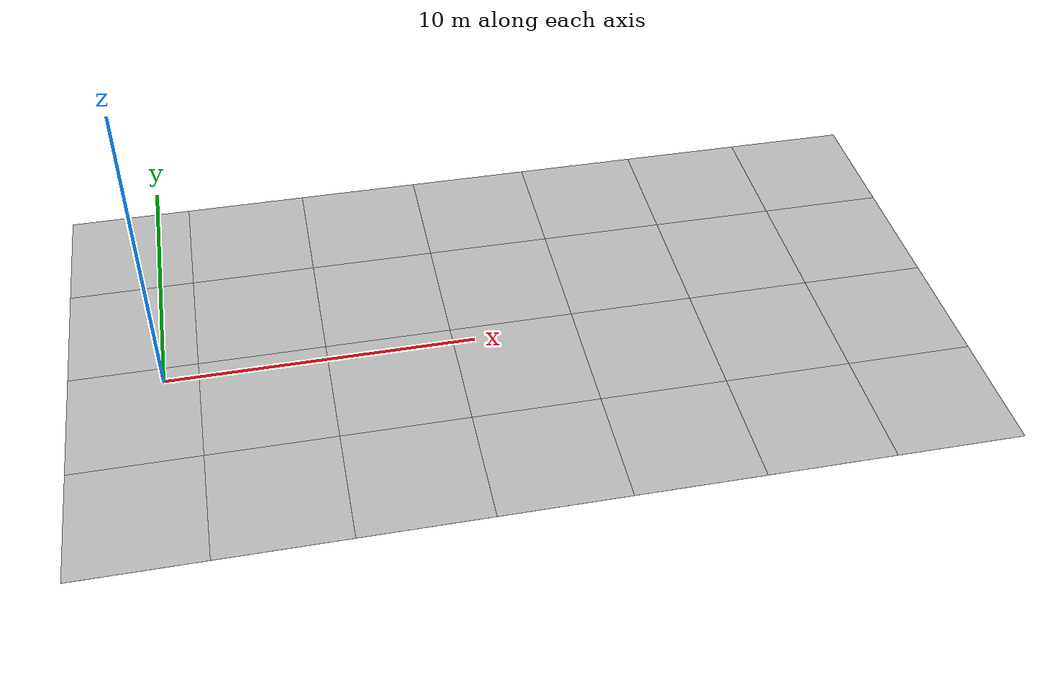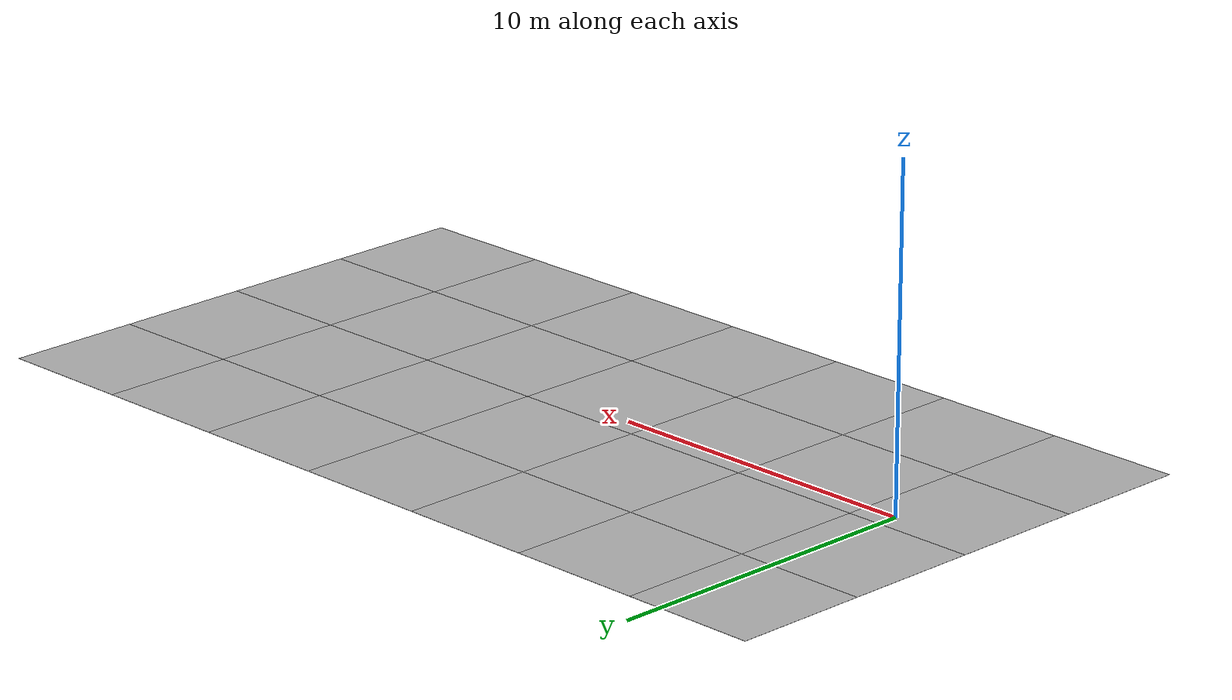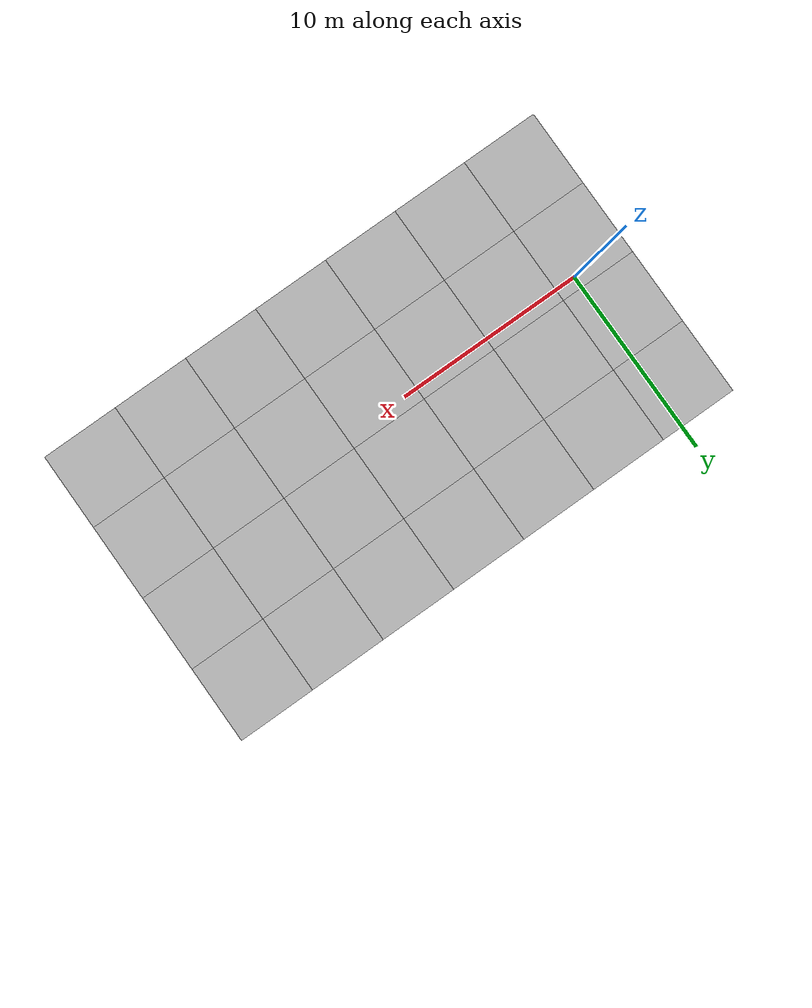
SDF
<sdf version='1.6'><world name='default'>
    <light name='sun_light' type='directional'>
      <pose frame=''>0 0 10 0 -0 0</pose>
      <diffuse>0.5 0.5 0.5 1</diffuse>
      <specular>0.1 0.1 0.1 1</specular>
      <direction>0.1 0.1 -0.9</direction>
      <attenuation>
        <range>20</range>
        <constant>0.5</constant>
        <linear>0.01</linear>
        <quadratic>0.001</quadratic>
      </attenuation>
      <cast_shadows>1</cast_shadows>
    </light>

    <model name='Tile/0-0'>
      <static>1</static>
      <link name='link'>
        <collision name='collision'>
          <geometry>
            <plane>
              <normal>0 0 1</normal>
              <size>4.096 4.096</size>
            </plane>
          </geometry>
          <surface>
            <friction>
              <ode>
                <mu>100</mu>
                <mu2>50</mu2>
              </ode>
              <torsional>
                <ode/>
              </torsional>
            </friction>
            <contact>
              <ode/>
            </contact>
            <bounce/>
          </surface>
          <max_contacts>10</max_contacts>
        </collision>
        <visual name='visual'>
          <cast_shadows>0</cast_shadows>
          <geometry>
            <plane>
              <normal>0 0 1</normal>
              <size>4.096 4.096</size>
            </plane>
          </geometry>
          <material>
            <script>
              <uri>file://materials/scripts</uri>
              <uri>file://materials/textures</uri>
              <name>Tile/5eab350b8220ac9944dbdfa4ac3288c7c17e24c3bf5df0dfcf6173d64dae00a1</name>
            </script>
          </material>
        </visual>
        <self_collide>0</self_collide>
        <enable_wind>0</enable_wind>
        <kinematic>0</kinematic>
      </link>
      <pose frame=''>-0.952 -5.5232812921102035 0 0 -0 0</pose>
    </model>

    <model name='Tile/0-1'>
      <static>1</static>
      <link name='link'>
        <collision name='collision'>
          <geometry>
            <plane>
              <normal>0 0 1</normal>
              <size>4.096 4.096</size>
            </plane>
          </geometry>
          <surface>
            <friction>
              <ode>
                <mu>100</mu>
                <mu2>50</mu2>
              </ode>
              <torsional>
                <ode/>
              </torsional>
            </friction>
            <contact>
              <ode/>
            </contact>
            <bounce/>
          </surface>
          <max_contacts>10</max_contacts>
        </collision>
        <visual name='visual'>
          <cast_shadows>0</cast_shadows>
          <geometry>
            <plane>
              <normal>0 0 1</normal>
              <size>4.096 4.096</size>
            </plane>
          </geometry>
          <material>
            <script>
              <uri>file://materials/scripts</uri>
              <uri>file://materials/textures</uri>
              <name>Tile/77732ed777fa1f7385c9abc7915a6c02e6d040daee73fd0058ec88173c0e603a</name>
            </script>
          </material>
        </visual>
        <self_collide>0</self_collide>
        <enable_wind>0</enable_wind>
        <kinematic>0</kinematic>
      </link>
      <pose frame=''>-0.952 -1.4272812921102034 0 0 -0 0</pose>
    </model>

    <model name='Tile/0-2'>
      <static>1</static>
      <link name='link'>
        <collision name='collision'>
          <geometry>
            <plane>
              <normal>0 0 1</normal>
              <size>4.096 4.096</size>
            </plane>
          </geometry>
          <surface>
            <friction>
              <ode>
                <mu>100</mu>
                <mu2>50</mu2>
              </ode>
              <torsional>
                <ode/>
              </torsional>
            </friction>
            <contact>
              <ode/>
            </contact>
            <bounce/>
          </surface>
          <max_contacts>10</max_contacts>
        </collision>
        <visual name='visual'>
          <cast_shadows>0</cast_shadows>
          <geometry>
            <plane>
              <normal>0 0 1</normal>
              <size>4.096 4.096</size>
            </plane>
          </geometry>
          <material>
            <script>
              <uri>file://materials/scripts</uri>
              <uri>file://materials/textures</uri>
              <name>Tile/5eab350b8220ac9944dbdfa4ac3288c7c17e24c3bf5df0dfcf6173d64dae00a1</name>
            </script>
          </material>
        </visual>
        <self_collide>0</self_collide>
        <enable_wind>0</enable_wind>
        <kinematic>0</kinematic>
      </link>
      <pose frame=''>-0.952 2.6687187078897967 0 0 -0 0</pose>
    </model>

    <model name='Tile/0-3'>
      <static>1</static>
      <link name='link'>
        <collision name='collision'>
          <geometry>
            <plane>
              <normal>0 0 1</normal>
              <size>4.096 4.096</size>
            </plane>
          </geometry>
          <surface>
            <friction>
              <ode>
                <mu>100</mu>
                <mu2>50</mu2>
              </ode>
              <torsional>
                <ode/>
              </torsional>
            </friction>
            <contact>
              <ode/>
            </contact>
            <bounce/>
          </surface>
          <max_contacts>10</max_contacts>
        </collision>
        <visual name='visual'>
          <cast_shadows>0</cast_shadows>
          <geometry>
            <plane>
              <normal>0 0 1</normal>
              <size>4.096 4.096</size>
            </plane>
          </geometry>
          <material>
            <script>
              <uri>file://materials/scripts</uri>
              <uri>file://materials/textures</uri>
              <name>Tile/5eab350b8220ac9944dbdfa4ac3288c7c17e24c3bf5df0dfcf6173d64dae00a1</name>
            </script>
          </material>
        </visual>
        <self_collide>0</self_collide>
        <enable_wind>0</enable_wind>
        <kinematic>0</kinematic>
      </link>
      <pose frame=''>-0.952 6.764718707889797 0 0 -0 0</pose>
    </model>

    <model name='Tile/1-0'>
      <static>1</static>
      <link name='link'>
        <collision name='collision'>
          <geometry>
            <plane>
              <normal>0 0 1</normal>
              <size>4.096 4.096</size>
            </plane>
          </geometry>
          <surface>
            <friction>
              <ode>
                <mu>100</mu>
                <mu2>50</mu2>
              </ode>
              <torsional>
                <ode/>
              </torsional>
            </friction>
            <contact>
              <ode/>
            </contact>
            <bounce/>
          </surface>
          <max_contacts>10</max_contacts>
        </collision>
        <visual name='visual'>
          <cast_shadows>0</cast_shadows>
          <geometry>
            <plane>
              <normal>0 0 1</normal>
              <size>4.096 4.096</size>
            </plane>
          </geometry>
          <material>
            <script>
              <uri>file://materials/scripts</uri>
              <uri>file://materials/textures</uri>
              <name>Tile/5eab350b8220ac9944dbdfa4ac3288c7c17e24c3bf5df0dfcf6173d64dae00a1</name>
            </script>
          </material>
        </visual>
        <self_collide>0</self_collide>
        <enable_wind>0</enable_wind>
        <kinematic>0</kinematic>
      </link>
      <pose frame=''>3.144 -5.5232812921102035 0 0 -0 0</pose>
    </model>

    <model name='Tile/1-1'>
      <static>1</static>
      <link name='link'>
        <collision name='collision'>
          <geometry>
            <plane>
              <normal>0 0 1</normal>
              <size>4.096 4.096</size>
            </plane>
          </geometry>
          <surface>
            <friction>
              <ode>
                <mu>100</mu>
                <mu2>50</mu2>
              </ode>
              <torsional>
                <ode/>
              </torsional>
            </friction>
            <contact>
              <ode/>
            </contact>
            <bounce/>
          </surface>
          <max_contacts>10</max_contacts>
        </collision>
        <visual name='visual'>
          <cast_shadows>0</cast_shadows>
          <geometry>
            <plane>
              <normal>0 0 1</normal>
              <size>4.096 4.096</size>
            </plane>
          </geometry>
          <material>
            <script>
              <uri>file://materials/scripts</uri>
              <uri>file://materials/textures</uri>
              <name>Tile/9a9c45f2f3ae123da64c76318918023181258b1b421ac945b76d3178dedd902e</name>
            </script>
          </material>
        </visual>
        <self_collide>0</self_collide>
        <enable_wind>0</enable_wind>
        <kinematic>0</kinematic>
      </link>
      <pose frame=''>3.144 -1.4272812921102034 0 0 -0 0</pose>
    </model>

    <model name='Tile/1-2'>
      <static>1</static>
      <link name='link'>
        <collision name='collision'>
          <geometry>
            <plane>
              <normal>0 0 1</normal>
              <size>4.096 4.096</size>
            </plane>
          </geometry>
          <surface>
            <friction>
              <ode>
                <mu>100</mu>
                <mu2>50</mu2>
              </ode>
              <torsional>
                <ode/>
              </torsional>
            </friction>
            <contact>
              <ode/>
            </contact>
            <bounce/>
          </surface>
          <max_contacts>10</max_contacts>
        </collision>
        <visual name='visual'>
          <cast_shadows>0</cast_shadows>
          <geometry>
            <plane>
              <normal>0 0 1</normal>
              <size>4.096 4.096</size>
            </plane>
          </geometry>
          <material>
            <script>
              <uri>file://materials/scripts</uri>
              <uri>file://materials/textures</uri>
              <name>Tile/f5207174bae2b5f094a2aebeb0c4ca01f930d179ab84015992e31550a93fa324</name>
            </script>
          </material>
        </visual>
        <self_collide>0</self_collide>
        <enable_wind>0</enable_wind>
        <kinematic>0</kinematic>
      </link>
      <pose frame=''>3.144 2.6687187078897967 0 0 -0 0</pose>
    </model>

    <model name='Tile/1-3'>
      <static>1</static>
      <link name='link'>
        <collision name='collision'>
          <geometry>
            <plane>
              <normal>0 0 1</normal>
              <size>4.096 4.096</size>
            </plane>
          </geometry>
          <surface>
            <friction>
              <ode>
                <mu>100</mu>
                <mu2>50</mu2>
              </ode>
              <torsional>
                <ode/>
              </torsional>
            </friction>
            <contact>
              <ode/>
            </contact>
            <bounce/>
          </surface>
          <max_contacts>10</max_contacts>
        </collision>
        <visual name='visual'>
          <cast_shadows>0</cast_shadows>
          <geometry>
            <plane>
              <normal>0 0 1</normal>
              <size>4.096 4.096</size>
            </plane>
          </geometry>
          <material>
            <script>
              <uri>file://materials/scripts</uri>
              <uri>file://materials/textures</uri>
              <name>Tile/5eab350b8220ac9944dbdfa4ac3288c7c17e24c3bf5df0dfcf6173d64dae00a1</name>
            </script>
          </material>
        </visual>
        <self_collide>0</self_collide>
        <enable_wind>0</enable_wind>
        <kinematic>0</kinematic>
      </link>
      <pose frame=''>3.144 6.764718707889797 0 0 -0 0</pose>
    </model>

    <model name='Tile/2-0'>
      <static>1</static>
      <link name='link'>
        <collision name='collision'>
          <geometry>
            <plane>
              <normal>0 0 1</normal>
              <size>4.096 4.096</size>
            </plane>
          </geometry>
          <surface>
            <friction>
              <ode>
                <mu>100</mu>
                <mu2>50</mu2>
              </ode>
              <torsional>
                <ode/>
              </torsional>
            </friction>
            <contact>
              <ode/>
            </contact>
            <bounce/>
          </surface>
          <max_contacts>10</max_contacts>
        </collision>
        <visual name='visual'>
          <cast_shadows>0</cast_shadows>
          <geometry>
            <plane>
              <normal>0 0 1</normal>
              <size>4.096 4.096</size>
            </plane>
          </geometry>
          <material>
            <script>
              <uri>file://materials/scripts</uri>
              <uri>file://materials/textures</uri>
              <name>Tile/5eab350b8220ac9944dbdfa4ac3288c7c17e24c3bf5df0dfcf6173d64dae00a1</name>
            </script>
          </material>
        </visual>
        <self_collide>0</self_collide>
        <enable_wind>0</enable_wind>
        <kinematic>0</kinematic>
      </link>
      <pose frame=''>7.24 -5.5232812921102035 0 0 -0 0</pose>
    </model>

    <model name='Tile/2-1'>
      <static>1</static>
      <link name='link'>
        <collision name='collision'>
          <geometry>
            <plane>
              <normal>0 0 1</normal>
              <size>4.096 4.096</size>
            </plane>
          </geometry>
          <surface>
            <friction>
              <ode>
                <mu>100</mu>
                <mu2>50</mu2>
              </ode>
              <torsional>
                <ode/>
              </torsional>
            </friction>
            <contact>
              <ode/>
            </contact>
            <bounce/>
          </surface>
          <max_contacts>10</max_contacts>
        </collision>
        <visual name='visual'>
          <cast_shadows>0</cast_shadows>
          <geometry>
            <plane>
              <normal>0 0 1</normal>
              <size>4.096 4.096</size>
            </plane>
          </geometry>
          <material>
            <script>
              <uri>file://materials/scripts</uri>
              <uri>file://materials/textures</uri>
              <name>Tile/80f1728328d1cf17491becb87c4a098df52c4d8f367fd717cb4e44747b35fe14</name>
            </script>
          </material>
        </visual>
        <self_collide>0</self_collide>
        <enable_wind>0</enable_wind>
        <kinematic>0</kinematic>
      </link>
      <pose frame=''>7.24 -1.4272812921102034 0 0 -0 0</pose>
    </model>

    <model name='Tile/2-2'>
      <static>1</static>
      <link name='link'>
        <collision name='collision'>
          <geometry>
            <plane>
              <normal>0 0 1</normal>
              <size>4.096 4.096</size>
            </plane>
          </geometry>
          <surface>
            <friction>
              <ode>
                <mu>100</mu>
                <mu2>50</mu2>
              </ode>
              <torsional>
                <ode/>
              </torsional>
            </friction>
            <contact>
              <ode/>
            </contact>
            <bounce/>
          </surface>
          <max_contacts>10</max_contacts>
        </collision>
        <visual name='visual'>
          <cast_shadows>0</cast_shadows>
          <geometry>
            <plane>
              <normal>0 0 1</normal>
              <size>4.096 4.096</size>
            </plane>
          </geometry>
          <material>
            <script>
              <uri>file://materials/scripts</uri>
              <uri>file://materials/textures</uri>
              <name>Tile/a97ce6c28d1b773002d50e0ac13da2d1c4f7e9045c18646be916c70b0014d4d6</name>
            </script>
          </material>
        </visual>
        <self_collide>0</self_collide>
        <enable_wind>0</enable_wind>
        <kinematic>0</kinematic>
      </link>
      <pose frame=''>7.24 2.6687187078897967 0 0 -0 0</pose>
    </model>

    <model name='Tile/2-3'>
      <static>1</static>
      <link name='link'>
        <collision name='collision'>
          <geometry>
            <plane>
              <normal>0 0 1</normal>
              <size>4.096 4.096</size>
            </plane>
          </geometry>
          <surface>
            <friction>
              <ode>
                <mu>100</mu>
                <mu2>50</mu2>
              </ode>
              <torsional>
                <ode/>
              </torsional>
            </friction>
            <contact>
              <ode/>
            </contact>
            <bounce/>
          </surface>
          <max_contacts>10</max_contacts>
        </collision>
        <visual name='visual'>
          <cast_shadows>0</cast_shadows>
          <geometry>
            <plane>
              <normal>0 0 1</normal>
              <size>4.096 4.096</size>
            </plane>
          </geometry>
          <material>
            <script>
              <uri>file://materials/scripts</uri>
              <uri>file://materials/textures</uri>
              <name>Tile/5eab350b8220ac9944dbdfa4ac3288c7c17e24c3bf5df0dfcf6173d64dae00a1</name>
            </script>
          </material>
        </visual>
        <self_collide>0</self_collide>
        <enable_wind>0</enable_wind>
        <kinematic>0</kinematic>
      </link>
      <pose frame=''>7.24 6.764718707889797 0 0 -0 0</pose>
    </model>

    <model name='Tile/3-0'>
      <static>1</static>
      <link name='link'>
        <collision name='collision'>
          <geometry>
            <plane>
              <normal>0 0 1</normal>
              <size>4.096 4.096</size>
            </plane>
          </geometry>
          <surface>
            <friction>
              <ode>
                <mu>100</mu>
                <mu2>50</mu2>
              </ode>
              <torsional>
                <ode/>
              </torsional>
            </friction>
            <contact>
              <ode/>
            </contact>
            <bounce/>
          </surface>
          <max_contacts>10</max_contacts>
        </collision>
        <visual name='visual'>
          <cast_shadows>0</cast_shadows>
          <geometry>
            <plane>
              <normal>0 0 1</normal>
              <size>4.096 4.096</size>
            </plane>
          </geometry>
          <material>
            <script>
              <uri>file://materials/scripts</uri>
              <uri>file://materials/textures</uri>
              <name>Tile/5eab350b8220ac9944dbdfa4ac3288c7c17e24c3bf5df0dfcf6173d64dae00a1</name>
            </script>
          </material>
        </visual>
        <self_collide>0</self_collide>
        <enable_wind>0</enable_wind>
        <kinematic>0</kinematic>
      </link>
      <pose frame=''>11.336 -5.5232812921102035 0 0 -0 0</pose>
    </model>

    <model name='Tile/3-1'>
      <static>1</static>
      <link name='link'>
        <collision name='collision'>
          <geometry>
            <plane>
              <normal>0 0 1</normal>
              <size>4.096 4.096</size>
            </plane>
          </geometry>
          <surface>
            <friction>
              <ode>
                <mu>100</mu>
                <mu2>50</mu2>
              </ode>
              <torsional>
                <ode/>
              </torsional>
            </friction>
            <contact>
              <ode/>
            </contact>
            <bounce/>
          </surface>
          <max_contacts>10</max_contacts>
        </collision>
        <visual name='visual'>
          <cast_shadows>0</cast_shadows>
          <geometry>
            <plane>
              <normal>0 0 1</normal>
              <size>4.096 4.096</size>
            </plane>
          </geometry>
          <material>
            <script>
              <uri>file://materials/scripts</uri>
              <uri>file://materials/textures</uri>
              <name>Tile/2058e8b0140f13087e55bef1d5642d244ed33c3c2e11ac535427c192cfb34b27</name>
            </script>
          </material>
        </visual>
        <self_collide>0</self_collide>
        <enable_wind>0</enable_wind>
        <kinematic>0</kinematic>
      </link>
      <pose frame=''>11.336 -1.4272812921102034 0 0 -0 0</pose>
    </model>

    <model name='Tile/3-2'>
      <static>1</static>
      <link name='link'>
        <collision name='collision'>
          <geometry>
            <plane>
              <normal>0 0 1</normal>
              <size>4.096 4.096</size>
            </plane>
          </geometry>
          <surface>
            <friction>
              <ode>
                <mu>100</mu>
                <mu2>50</mu2>
              </ode>
              <torsional>
                <ode/>
              </torsional>
            </friction>
            <contact>
              <ode/>
            </contact>
            <bounce/>
          </surface>
          <max_contacts>10</max_contacts>
        </collision>
        <visual name='visual'>
          <cast_shadows>0</cast_shadows>
          <geometry>
            <plane>
              <normal>0 0 1</normal>
              <size>4.096 4.096</size>
            </plane>
          </geometry>
          <material>
            <script>
              <uri>file://materials/scripts</uri>
              <uri>file://materials/textures</uri>
              <name>Tile/5eab350b8220ac9944dbdfa4ac3288c7c17e24c3bf5df0dfcf6173d64dae00a1</name>
            </script>
          </material>
        </visual>
        <self_collide>0</self_collide>
        <enable_wind>0</enable_wind>
        <kinematic>0</kinematic>
      </link>
      <pose frame=''>11.336 2.6687187078897967 0 0 -0 0</pose>
    </model>

    <model name='Tile/3-3'>
      <static>1</static>
      <link name='link'>
        <collision name='collision'>
          <geometry>
            <plane>
              <normal>0 0 1</normal>
              <size>4.096 4.096</size>
            </plane>
          </geometry>
          <surface>
            <friction>
              <ode>
                <mu>100</mu>
                <mu2>50</mu2>
              </ode>
              <torsional>
                <ode/>
              </torsional>
            </friction>
            <contact>
              <ode/>
            </contact>
            <bounce/>
          </surface>
          <max_contacts>10</max_contacts>
        </collision>
        <visual name='visual'>
          <cast_shadows>0</cast_shadows>
          <geometry>
            <plane>
              <normal>0 0 1</normal>
              <size>4.096 4.096</size>
            </plane>
          </geometry>
          <material>
            <script>
              <uri>file://materials/scripts</uri>
              <uri>file://materials/textures</uri>
              <name>Tile/5eab350b8220ac9944dbdfa4ac3288c7c17e24c3bf5df0dfcf6173d64dae00a1</name>
            </script>
          </material>
        </visual>
        <self_collide>0</self_collide>
        <enable_wind>0</enable_wind>
        <kinematic>0</kinematic>
      </link>
      <pose frame=''>11.336 6.764718707889797 0 0 -0 0</pose>
    </model>

    <model name='Tile/4-0'>
      <static>1</static>
      <link name='link'>
        <collision name='collision'>
          <geometry>
            <plane>
              <normal>0 0 1</normal>
              <size>4.096 4.096</size>
            </plane>
          </geometry>
          <surface>
            <friction>
              <ode>
                <mu>100</mu>
                <mu2>50</mu2>
              </ode>
              <torsional>
                <ode/>
              </torsional>
            </friction>
            <contact>
              <ode/>
            </contact>
            <bounce/>
          </surface>
          <max_contacts>10</max_contacts>
        </collision>
        <visual name='visual'>
          <cast_shadows>0</cast_shadows>
          <geometry>
            <plane>
              <normal>0 0 1</normal>
              <size>4.096 4.096</size>
            </plane>
          </geometry>
          <material>
            <script>
              <uri>file://materials/scripts</uri>
              <uri>file://materials/textures</uri>
              <name>Tile/5eab350b8220ac9944dbdfa4ac3288c7c17e24c3bf5df0dfcf6173d64dae00a1</name>
            </script>
          </material>
        </visual>
        <self_collide>0</self_collide>
        <enable_wind>0</enable_wind>
        <kinematic>0</kinematic>
      </link>
      <pose frame=''>15.431999999999999 -5.5232812921102035 0 0 -0 0</pose>
    </model>

    <model name='Tile/4-1'>
      <static>1</static>
      <link name='link'>
        <collision name='collision'>
          <geometry>
            <plane>
              <normal>0 0 1</normal>
              <size>4.096 4.096</size>
            </plane>
          </geometry>
          <surface>
            <friction>
              <ode>
                <mu>100</mu>
                <mu2>50</mu2>
              </ode>
              <torsional>
                <ode/>
              </torsional>
            </friction>
            <contact>
              <ode/>
            </contact>
            <bounce/>
          </surface>
          <max_contacts>10</max_contacts>
        </collision>
        <visual name='visual'>
          <cast_shadows>0</cast_shadows>
          <geometry>
            <plane>
              <normal>0 0 1</normal>
              <size>4.096 4.096</size>
            </plane>
          </geometry>
          <material>
            <script>
              <uri>file://materials/scripts</uri>
              <uri>file://materials/textures</uri>
              <name>Tile/02a629105f71d5f45e66485bcbb64a8fc3bdcd5e42cacda941f174c0ebe1cee6</name>
            </script>
          </material>
        </visual>
        <self_collide>0</self_collide>
        <enable_wind>0</enable_wind>
        <kinematic>0</kinematic>
      </link>
      <pose frame=''>15.431999999999999 -1.4272812921102034 0 0 -0 0</pose>
    </model>

    <model name='Tile/4-2'>
      <static>1</static>
      <link name='link'>
        <collision name='collision'>
          <geometry>
            <plane>
              <normal>0 0 1</normal>
              <size>4.096 4.096</size>
            </plane>
          </geometry>
          <surface>
            <friction>
              <ode>
                <mu>100</mu>
                <mu2>50</mu2>
              </ode>
              <torsional>
                <ode/>
              </torsional>
            </friction>
            <contact>
              <ode/>
            </contact>
            <bounce/>
          </surface>
          <max_contacts>10</max_contacts>
        </collision>
        <visual name='visual'>
          <cast_shadows>0</cast_shadows>
          <geometry>
            <plane>
              <normal>0 0 1</normal>
              <size>4.096 4.096</size>
            </plane>
          </geometry>
          <material>
            <script>
              <uri>file://materials/scripts</uri>
              <uri>file://materials/textures</uri>
              <name>Tile/6d2e7846da5a1a41c5b649178ea03dbaef44e2cee76cec37587eaf4ea3ebff64</name>
            </script>
          </material>
        </visual>
        <self_collide>0</self_collide>
        <enable_wind>0</enable_wind>
        <kinematic>0</kinematic>
      </link>
      <pose frame=''>15.431999999999999 2.6687187078897967 0 0 -0 0</pose>
    </model>

    <model name='Tile/4-3'>
      <static>1</static>
      <link name='link'>
        <collision name='collision'>
          <geometry>
            <plane>
              <normal>0 0 1</normal>
              <size>4.096 4.096</size>
            </plane>
          </geometry>
          <surface>
            <friction>
              <ode>
                <mu>100</mu>
                <mu2>50</mu2>
              </ode>
              <torsional>
                <ode/>
              </torsional>
            </friction>
            <contact>
              <ode/>
            </contact>
            <bounce/>
          </surface>
          <max_contacts>10</max_contacts>
        </collision>
        <visual name='visual'>
          <cast_shadows>0</cast_shadows>
          <geometry>
            <plane>
              <normal>0 0 1</normal>
              <size>4.096 4.096</size>
            </plane>
          </geometry>
          <material>
            <script>
              <uri>file://materials/scripts</uri>
              <uri>file://materials/textures</uri>
              <name>Tile/5eab350b8220ac9944dbdfa4ac3288c7c17e24c3bf5df0dfcf6173d64dae00a1</name>
            </script>
          </material>
        </visual>
        <self_collide>0</self_collide>
        <enable_wind>0</enable_wind>
        <kinematic>0</kinematic>
      </link>
      <pose frame=''>15.431999999999999 6.764718707889797 0 0 -0 0</pose>
    </model>

    <model name='Tile/5-0'>
      <static>1</static>
      <link name='link'>
        <collision name='collision'>
          <geometry>
            <plane>
              <normal>0 0 1</normal>
              <size>4.096 4.096</size>
            </plane>
          </geometry>
          <surface>
            <friction>
              <ode>
                <mu>100</mu>
                <mu2>50</mu2>
              </ode>
              <torsional>
                <ode/>
              </torsional>
            </friction>
            <contact>
              <ode/>
            </contact>
            <bounce/>
          </surface>
          <max_contacts>10</max_contacts>
        </collision>
        <visual name='visual'>
          <cast_shadows>0</cast_shadows>
          <geometry>
            <plane>
              <normal>0 0 1</normal>
              <size>4.096 4.096</size>
            </plane>
          </geometry>
          <material>
            <script>
              <uri>file://materials/scripts</uri>
              <uri>file://materials/textures</uri>
              <name>Tile/1f79e4427144165e04f1f647a8c5c3f8feb2a4f8d6b3c1abf682d198a1141d4b</name>
            </script>
          </material>
        </visual>
        <self_collide>0</self_collide>
        <enable_wind>0</enable_wind>
        <kinematic>0</kinematic>
      </link>
      <pose frame=''>19.528 -5.5232812921102035 0 0 -0 0</pose>
    </model>

    <model name='Tile/5-1'>
      <static>1</static>
      <link name='link'>
        <collision name='collision'>
          <geometry>
            <plane>
              <normal>0 0 1</normal>
              <size>4.096 4.096</size>
            </plane>
          </geometry>
          <surface>
            <friction>
              <ode>
                <mu>100</mu>
                <mu2>50</mu2>
              </ode>
              <torsional>
                <ode/>
              </torsional>
            </friction>
            <contact>
              <ode/>
            </contact>
            <bounce/>
          </surface>
          <max_contacts>10</max_contacts>
        </collision>
        <visual name='visual'>
          <cast_shadows>0</cast_shadows>
          <geometry>
            <plane>
              <normal>0 0 1</normal>
              <size>4.096 4.096</size>
            </plane>
          </geometry>
          <material>
            <script>
              <uri>file://materials/scripts</uri>
              <uri>file://materials/textures</uri>
              <name>Tile/83fe6895a220f1ef5a91dc3e5e02060d03c6cc36c83f93fef9699cf2e7249c2e</name>
            </script>
          </material>
        </visual>
        <self_collide>0</self_collide>
        <enable_wind>0</enable_wind>
        <kinematic>0</kinematic>
      </link>
      <pose frame=''>19.528 -1.4272812921102034 0 0 -0 0</pose>
    </model>

    <model name='Tile/5-2'>
      <static>1</static>
      <link name='link'>
        <collision name='collision'>
          <geometry>
            <plane>
              <normal>0 0 1</normal>
              <size>4.096 4.096</size>
            </plane>
          </geometry>
          <surface>
            <friction>
              <ode>
                <mu>100</mu>
                <mu2>50</mu2>
              </ode>
              <torsional>
                <ode/>
              </torsional>
            </friction>
            <contact>
              <ode/>
            </contact>
            <bounce/>
          </surface>
          <max_contacts>10</max_contacts>
        </collision>
        <visual name='visual'>
          <cast_shadows>0</cast_shadows>
          <geometry>
            <plane>
              <normal>0 0 1</normal>
              <size>4.096 4.096</size>
            </plane>
          </geometry>
          <material>
            <script>
              <uri>file://materials/scripts</uri>
              <uri>file://materials/textures</uri>
              <name>Tile/92e3578c3478731c21097058d722f3dbe75bd8f83b64b6a479ee48ef76303996</name>
            </script>
          </material>
        </visual>
        <self_collide>0</self_collide>
        <enable_wind>0</enable_wind>
        <kinematic>0</kinematic>
      </link>
      <pose frame=''>19.528 2.6687187078897967 0 0 -0 0</pose>
    </model>

    <model name='Tile/5-3'>
      <static>1</static>
      <link name='link'>
        <collision name='collision'>
          <geometry>
            <plane>
              <normal>0 0 1</normal>
              <size>4.096 4.096</size>
            </plane>
          </geometry>
          <surface>
            <friction>
              <ode>
                <mu>100</mu>
                <mu2>50</mu2>
              </ode>
              <torsional>
                <ode/>
              </torsional>
            </friction>
            <contact>
              <ode/>
            </contact>
            <bounce/>
          </surface>
          <max_contacts>10</max_contacts>
        </collision>
        <visual name='visual'>
          <cast_shadows>0</cast_shadows>
          <geometry>
            <plane>
              <normal>0 0 1</normal>
              <size>4.096 4.096</size>
            </plane>
          </geometry>
          <material>
            <script>
              <uri>file://materials/scripts</uri>
              <uri>file://materials/textures</uri>
              <name>Tile/5eab350b8220ac9944dbdfa4ac3288c7c17e24c3bf5df0dfcf6173d64dae00a1</name>
            </script>
          </material>
        </visual>
        <self_collide>0</self_collide>
        <enable_wind>0</enable_wind>
        <kinematic>0</kinematic>
      </link>
      <pose frame=''>19.528 6.764718707889797 0 0 -0 0</pose>
    </model>

    <model name='Tile/6-0'>
      <static>1</static>
      <link name='link'>
        <collision name='collision'>
          <geometry>
            <plane>
              <normal>0 0 1</normal>
              <size>4.096 4.096</size>
            </plane>
          </geometry>
          <surface>
            <friction>
              <ode>
                <mu>100</mu>
                <mu2>50</mu2>
              </ode>
              <torsional>
                <ode/>
              </torsional>
            </friction>
            <contact>
              <ode/>
            </contact>
            <bounce/>
          </surface>
          <max_contacts>10</max_contacts>
        </collision>
        <visual name='visual'>
          <cast_shadows>0</cast_shadows>
          <geometry>
            <plane>
              <normal>0 0 1</normal>
              <size>4.096 4.096</size>
            </plane>
          </geometry>
          <material>
            <script>
              <uri>file://materials/scripts</uri>
              <uri>file://materials/textures</uri>
              <name>Tile/5eab350b8220ac9944dbdfa4ac3288c7c17e24c3bf5df0dfcf6173d64dae00a1</name>
            </script>
          </material>
        </visual>
        <self_collide>0</self_collide>
        <enable_wind>0</enable_wind>
        <kinematic>0</kinematic>
      </link>
      <pose frame=''>23.624 -5.5232812921102035 0 0 -0 0</pose>
    </model>

    <model name='Tile/6-1'>
      <static>1</static>
      <link name='link'>
        <collision name='collision'>
          <geometry>
            <plane>
              <normal>0 0 1</normal>
              <size>4.096 4.096</size>
            </plane>
          </geometry>
          <surface>
            <friction>
              <ode>
                <mu>100</mu>
                <mu2>50</mu2>
              </ode>
              <torsional>
                <ode/>
              </torsional>
            </friction>
            <contact>
              <ode/>
            </contact>
            <bounce/>
          </surface>
          <max_contacts>10</max_contacts>
        </collision>
        <visual name='visual'>
          <cast_shadows>0</cast_shadows>
          <geometry>
            <plane>
              <normal>0 0 1</normal>
              <size>4.096 4.096</size>
            </plane>
          </geometry>
          <material>
            <script>
              <uri>file://materials/scripts</uri>
              <uri>file://materials/textures</uri>
              <name>Tile/5eab350b8220ac9944dbdfa4ac3288c7c17e24c3bf5df0dfcf6173d64dae00a1</name>
            </script>
          </material>
        </visual>
        <self_collide>0</self_collide>
        <enable_wind>0</enable_wind>
        <kinematic>0</kinematic>
      </link>
      <pose frame=''>23.624 -1.4272812921102034 0 0 -0 0</pose>
    </model>

    <model name='Tile/6-2'>
      <static>1</static>
      <link name='link'>
        <collision name='collision'>
          <geometry>
            <plane>
              <normal>0 0 1</normal>
              <size>4.096 4.096</size>
            </plane>
          </geometry>
          <surface>
            <friction>
              <ode>
                <mu>100</mu>
                <mu2>50</mu2>
              </ode>
              <torsional>
                <ode/>
              </torsional>
            </friction>
            <contact>
              <ode/>
            </contact>
            <bounce/>
          </surface>
          <max_contacts>10</max_contacts>
        </collision>
        <visual name='visual'>
          <cast_shadows>0</cast_shadows>
          <geometry>
            <plane>
              <normal>0 0 1</normal>
              <size>4.096 4.096</size>
            </plane>
          </geometry>
          <material>
            <script>
              <uri>file://materials/scripts</uri>
              <uri>file://materials/textures</uri>
              <name>Tile/5eab350b8220ac9944dbdfa4ac3288c7c17e24c3bf5df0dfcf6173d64dae00a1</name>
            </script>
          </material>
        </visual>
        <self_collide>0</self_collide>
        <enable_wind>0</enable_wind>
        <kinematic>0</kinematic>
      </link>
      <pose frame=''>23.624 2.6687187078897967 0 0 -0 0</pose>
    </model>

    <model name='Tile/6-3'>
      <static>1</static>
      <link name='link'>
        <collision name='collision'>
          <geometry>
            <plane>
              <normal>0 0 1</normal>
              <size>4.096 4.096</size>
            </plane>
          </geometry>
          <surface>
            <friction>
              <ode>
                <mu>100</mu>
                <mu2>50</mu2>
              </ode>
              <torsional>
                <ode/>
              </torsional>
            </friction>
            <contact>
              <ode/>
            </contact>
            <bounce/>
          </surface>
          <max_contacts>10</max_contacts>
        </collision>
        <visual name='visual'>
          <cast_shadows>0</cast_shadows>
          <geometry>
            <plane>
              <normal>0 0 1</normal>
              <size>4.096 4.096</size>
            </plane>
          </geometry>
          <material>
            <script>
              <uri>file://materials/scripts</uri>
              <uri>file://materials/textures</uri>
              <name>Tile/5eab350b8220ac9944dbdfa4ac3288c7c17e24c3bf5df0dfcf6173d64dae00a1</name>
            </script>
          </material>
        </visual>
        <self_collide>0</self_collide>
        <enable_wind>0</enable_wind>
        <kinematic>0</kinematic>
      </link>
      <pose frame=''>23.624 6.764718707889797 0 0 -0 0</pose>
    </model>
    </world></sdf>
